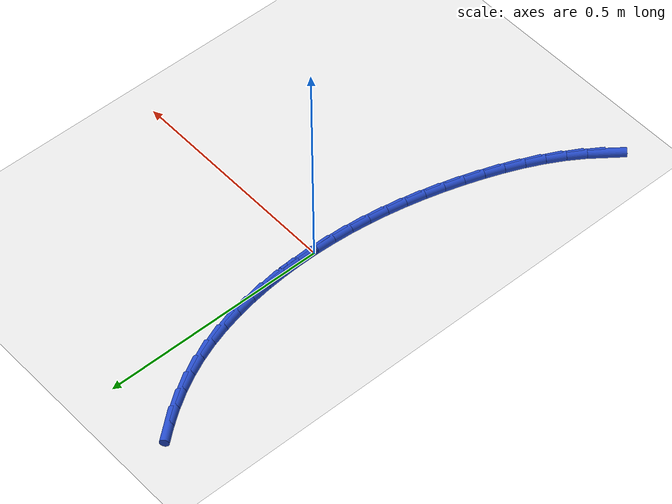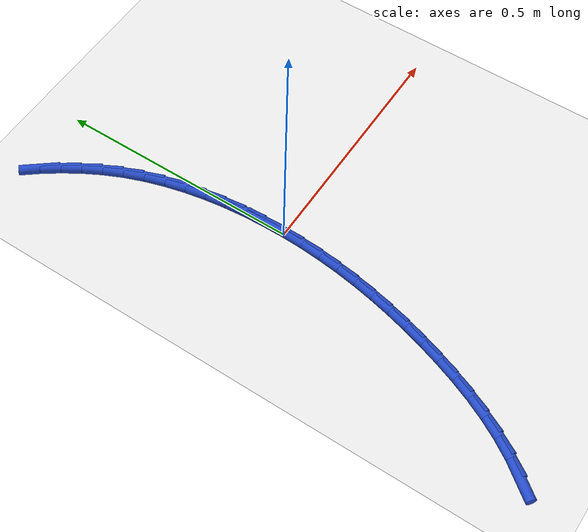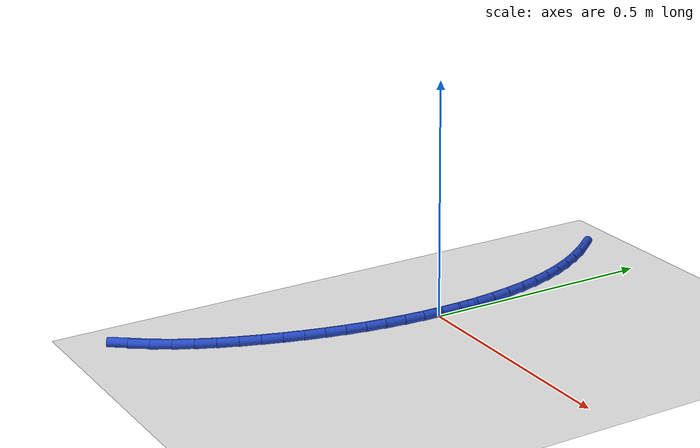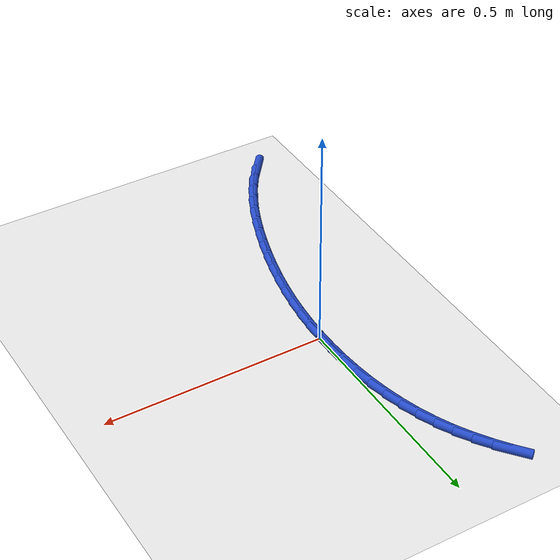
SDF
<sdf version="1.6">
 <world name="default">
  <model name="ground_plane">
   <static>1</static>
   <link name="link">
    <collision name="collision">
     <geometry><plane><normal>0 0 1</normal><size>100 100</size></plane></geometry>
     <surface><friction><ode><mu>100</mu><mu2>50</mu2></ode></friction></surface>
    </collision>
    <visual name="visual">
     <cast_shadows>0</cast_shadows>
     <geometry><plane><normal>0 0 1</normal><size>100 100</size></plane></geometry>
     <material>
      <script><uri>file://media/materials/scripts/gazebo.material</uri><name>Gazebo/WhiteGlow</name></script>
     </material>
    </visual>
   </link>
  </model>
  <model name="line">
   <link name="link_0">
    <pose>2.6020852139652106e-18 6.938893903907228e-17 0.01 0 1.57 -1.5685525435773073</pose>
    <collision name="collision">
     <geometry><cylinder><radius>0.01</radius><length>0.08</length></cylinder></geometry>
    </collision>
    <visual name="visual">
     <material>
      <script><name>Gazebo/Blue</name><uri>file://media/materials/scripts/gazebo.material</uri></script>
     </material>
     <geometry><cylinder><radius>0.01</radius><length>0.08</length></cylinder></geometry>
    </visual>
   </link>
   <link name="link_1">
    <pose>-9.700862294422992e-05 0.04323432824750585 0.01 0 1.57 -1.526157090669468</pose>
    <collision name="collision">
     <geometry><cylinder><radius>0.01</radius><length>0.08</length></cylinder></geometry>
    </collision>
    <visual name="visual">
     <material>
      <script><name>Gazebo/Blue</name><uri>file://media/materials/scripts/gazebo.material</uri></script>
     </material>
     <geometry><cylinder><radius>0.01</radius><length>0.08</length></cylinder></geometry>
    </visual>
   </link>
   <link name="link_2">
    <pose>-0.0020345948504014 0.08661094577264346 0.01 0 1.57 -1.481457483727426</pose>
    <collision name="collision">
     <geometry><cylinder><radius>0.01</radius><length>0.08</length></cylinder></geometry>
    </collision>
    <visual name="visual">
     <material>
      <script><name>Gazebo/Blue</name><uri>file://media/materials/scripts/gazebo.material</uri></script>
     </material>
     <geometry><cylinder><radius>0.01</radius><length>0.08</length></cylinder></geometry>
    </visual>
   </link>
   <link name="link_3">
    <pose>-0.005911129818629876 0.12988681452351736 0.01 0 1.57 -1.4339087129957682</pose>
    <collision name="collision">
     <geometry><cylinder><radius>0.01</radius><length>0.08</length></cylinder></geometry>
    </collision>
    <visual name="visual">
     <material>
      <script><name>Gazebo/Blue</name><uri>file://media/materials/scripts/gazebo.material</uri></script>
     </material>
     <geometry><cylinder><radius>0.01</radius><length>0.08</length></cylinder></geometry>
    </visual>
   </link>
   <link name="link_4">
    <pose>-0.011824984663888063 0.17281889644823215 0.01 0 1.57 -1.3829444190439464</pose>
    <collision name="collision">
     <geometry><cylinder><radius>0.01</radius><length>0.08</length></cylinder></geometry>
    </collision>
    <visual name="visual">
     <material>
      <script><name>Gazebo/Blue</name><uri>file://media/materials/scripts/gazebo.material</uri></script>
     </material>
     <geometry><cylinder><radius>0.01</radius><length>0.08</length></cylinder></geometry>
    </visual>
   </link>
   <link name="link_5">
    <pose>-0.01987453052243432 0.21516415349489235 0.01 0 1.57 -1.3279779806215533</pose>
    <collision name="collision">
     <geometry><cylinder><radius>0.01</radius><length>0.08</length></cylinder></geometry>
    </collision>
    <visual name="visual">
     <material>
      <script><name>Gazebo/Blue</name><uri>file://media/materials/scripts/gazebo.material</uri></script>
     </material>
     <geometry><cylinder><radius>0.01</radius><length>0.08</length></cylinder></geometry>
    </visual>
   </link>
   <link name="link_6">
    <pose>-0.030158138530527026 0.25667954761160244 0.01 0 1.57 -1.2684124791670501</pose>
    <collision name="collision">
     <geometry><cylinder><radius>0.01</radius><length>0.08</length></cylinder></geometry>
    </collision>
    <visual name="visual">
     <material>
      <script><name>Gazebo/Blue</name><uri>file://media/materials/scripts/gazebo.material</uri></script>
     </material>
     <geometry><cylinder><radius>0.01</radius><length>0.08</length></cylinder></geometry>
    </visual>
   </link>
   <link name="link_7">
    <pose>-0.04277417982442458 0.29712204074646703 0.01 0 1.57 -1.2036632140516401</pose>
    <collision name="collision">
     <geometry><cylinder><radius>0.01</radius><length>0.08</length></cylinder></geometry>
    </collision>
    <visual name="visual">
     <material>
      <script><name>Gazebo/Blue</name><uri>file://media/materials/scripts/gazebo.material</uri></script>
     </material>
     <geometry><cylinder><radius>0.01</radius><length>0.08</length></cylinder></geometry>
    </visual>
   </link>
   <link name="link_8">
    <pose>-0.05782102554038537 0.3362485948475908 0.01 0 1.57 -1.1341719705778326</pose>
    <collision name="collision">
     <geometry><cylinder><radius>0.01</radius><length>0.08</length></cylinder></geometry>
    </collision>
    <visual name="visual">
     <material>
      <script><name>Gazebo/Blue</name><uri>file://media/materials/scripts/gazebo.material</uri></script>
     </material>
     <geometry><cylinder><radius>0.01</radius><length>0.08</length></cylinder></geometry>
    </visual>
   </link>
   <link name="link_9">
    <pose>-0.07536937202131329 0.373852469561113 0.01 0 1.57 -1.0660788415146025</pose>
    <collision name="collision">
     <geometry><cylinder><radius>0.01</radius><length>0.08</length></cylinder></geometry>
    </collision>
    <visual name="visual">
     <material>
      <script><name>Gazebo/Blue</name><uri>file://media/materials/scripts/gazebo.material</uri></script>
     </material>
     <geometry><cylinder><radius>0.01</radius><length>0.08</length></cylinder></geometry>
    </visual>
   </link>
   <link name="link_10">
    <pose>-0.09531484360284005 0.4099565454294516 0.01 0 1.57 -1.0024793015918327</pose>
    <collision name="collision">
     <geometry><cylinder><radius>0.01</radius><length>0.08</length></cylinder></geometry>
    </collision>
    <visual name="visual">
     <material>
      <script><name>Gazebo/Blue</name><uri>file://media/materials/scripts/gazebo.material</uri></script>
     </material>
     <geometry><cylinder><radius>0.01</radius><length>0.08</length></cylinder></geometry>
    </visual>
   </link>
   <link name="link_11">
    <pose>-0.11748480464907832 0.4446732313901359 0.01 0 1.57 -0.9439532809843925</pose>
    <collision name="collision">
     <geometry><cylinder><radius>0.01</radius><length>0.08</length></cylinder></geometry>
    </collision>
    <visual name="visual">
     <material>
      <script><name>Gazebo/Blue</name><uri>file://media/materials/scripts/gazebo.material</uri></script>
     </material>
     <geometry><cylinder><radius>0.01</radius><length>0.08</length></cylinder></geometry>
    </visual>
   </link>
   <link name="link_12">
    <pose>-0.14170646449625524 0.47811513971212805 0.01 0 1.57 -0.8908490246325244</pose>
    <collision name="collision">
     <geometry><cylinder><radius>0.01</radius><length>0.08</length></cylinder></geometry>
    </collision>
    <visual name="visual">
     <material>
      <script><name>Gazebo/Blue</name><uri>file://media/materials/scripts/gazebo.material</uri></script>
     </material>
     <geometry><cylinder><radius>0.01</radius><length>0.08</length></cylinder></geometry>
    </visual>
   </link>
   <link name="link_165">
    <pose>-0.195717259281678 -0.6033903711224953 0.01 0 1.57 0.904285268633542</pose>
    <collision name="collision">
     <geometry><cylinder><radius>0.01</radius><length>0.08</length></cylinder></geometry>
    </collision>
    <visual name="visual">
     <material>
      <script><name>Gazebo/Blue</name><uri>file://media/materials/scripts/gazebo.material</uri></script>
     </material>
     <geometry><cylinder><radius>0.01</radius><length>0.08</length></cylinder></geometry>
    </visual>
   </link>
   <link name="link_166">
    <pose>-0.16949132827520091 -0.5700491150356503 0.01 0 1.57 0.9833611051586798</pose>
    <collision name="collision">
     <geometry><cylinder><radius>0.01</radius><length>0.08</length></cylinder></geometry>
    </collision>
    <visual name="visual">
     <material>
      <script><name>Gazebo/Blue</name><uri>file://media/materials/scripts/gazebo.material</uri></script>
     </material>
     <geometry><cylinder><radius>0.01</radius><length>0.08</length></cylinder></geometry>
    </visual>
   </link>
   <link name="link_167">
    <pose>-0.14578866247484112 -0.5344513715930191 0.01 0 1.57 1.0524759101406238</pose>
    <collision name="collision">
     <geometry><cylinder><radius>0.01</radius><length>0.08</length></cylinder></geometry>
    </collision>
    <visual name="visual">
     <material>
      <script><name>Gazebo/Blue</name><uri>file://media/materials/scripts/gazebo.material</uri></script>
     </material>
     <geometry><cylinder><radius>0.01</radius><length>0.08</length></cylinder></geometry>
    </visual>
   </link>
   <link name="link_168">
    <pose>-0.12441384169920168 -0.4969736318422013 0.01 0 1.57 1.112255959322198</pose>
    <collision name="collision">
     <geometry><cylinder><radius>0.01</radius><length>0.08</length></cylinder></geometry>
    </collision>
    <visual name="visual">
     <material>
      <script><name>Gazebo/Blue</name><uri>file://media/materials/scripts/gazebo.material</uri></script>
     </material>
     <geometry><cylinder><radius>0.01</radius><length>0.08</length></cylinder></geometry>
    </visual>
   </link>
   <link name="link_169">
    <pose>-0.10517144576688554 -0.4579923868307958 0.01 0 1.57 1.1634608279573564</pose>
    <collision name="collision">
     <geometry><cylinder><radius>0.01</radius><length>0.08</length></cylinder></geometry>
    </collision>
    <visual name="visual">
     <material>
      <script><name>Gazebo/Blue</name><uri>file://media/materials/scripts/gazebo.material</uri></script>
     </material>
     <geometry><cylinder><radius>0.01</radius><length>0.08</length></cylinder></geometry>
    </visual>
   </link>
   <link name="link_170">
    <pose>-0.08786605449649552 -0.41788412760640153 0.01 0 1.57 1.206848225395955</pose>
    <collision name="collision">
     <geometry><cylinder><radius>0.01</radius><length>0.08</length></cylinder></geometry>
    </collision>
    <visual name="visual">
     <material>
      <script><name>Gazebo/Blue</name><uri>file://media/materials/scripts/gazebo.material</uri></script>
     </material>
     <geometry><cylinder><radius>0.01</radius><length>0.08</length></cylinder></geometry>
    </visual>
   </link>
   <link name="link_171">
    <pose>-0.07230224770663535 -0.3770253452166197 0.01 0 1.57 1.2430954868188013</pose>
    <collision name="collision">
     <geometry><cylinder><radius>0.01</radius><length>0.08</length></cylinder></geometry>
    </collision>
    <visual name="visual">
     <material>
      <script><name>Gazebo/Blue</name><uri>file://media/materials/scripts/gazebo.material</uri></script>
     </material>
     <geometry><cylinder><radius>0.01</radius><length>0.08</length></cylinder></geometry>
    </visual>
   </link>
   <link name="link_172">
    <pose>-0.058284742331834685 -0.3357922922450885 0.01 0 1.57 1.274789412474063</pose>
    <collision name="collision">
     <geometry><cylinder><radius>0.01</radius><length>0.08</length></cylinder></geometry>
    </collision>
    <visual name="visual">
     <material>
      <script><name>Gazebo/Blue</name><uri>file://media/materials/scripts/gazebo.material</uri></script>
     </material>
     <geometry><cylinder><radius>0.01</radius><length>0.08</length></cylinder></geometry>
    </visual>
   </link>
   <link name="link_173">
    <pose>-0.04567862850490697 -0.29445622375807695 0.01 0 1.57 1.3073822291759554</pose>
    <collision name="collision">
     <geometry><cylinder><radius>0.01</radius><length>0.08</length></cylinder></geometry>
    </collision>
    <visual name="visual">
     <material>
      <script><name>Gazebo/Blue</name><uri>file://media/materials/scripts/gazebo.material</uri></script>
     </material>
     <geometry><cylinder><radius>0.01</radius><length>0.08</length></cylinder></geometry>
    </visual>
   </link>
   <link name="link_174">
    <pose>-0.0345038405048568 -0.25301909898542657 0.01 0 1.57 1.3416252324695384</pose>
    <collision name="collision">
     <geometry><cylinder><radius>0.01</radius><length>0.08</length></cylinder></geometry>
    </collision>
    <visual name="visual">
     <material>
      <script><name>Gazebo/Blue</name><uri>file://media/materials/scripts/gazebo.material</uri></script>
     </material>
     <geometry><cylinder><radius>0.01</radius><length>0.08</length></cylinder></geometry>
    </visual>
   </link>
   <link name="link_175">
    <pose>-0.02480478985188088 -0.21144030777801034 0.01 0 1.57 1.3773943945600047</pose>
    <collision name="collision">
     <geometry><cylinder><radius>0.01</radius><length>0.08</length></cylinder></geometry>
    </collision>
    <visual name="visual">
     <material>
      <script><name>Gazebo/Blue</name><uri>file://media/materials/scripts/gazebo.material</uri></script>
     </material>
     <geometry><cylinder><radius>0.01</radius><length>0.08</length></cylinder></geometry>
    </visual>
   </link>
   <link name="link_176">
    <pose>-0.01662588806617576 -0.16967923998670065 0.01 0 1.57 1.414536179421624</pose>
    <collision name="collision">
     <geometry><cylinder><radius>0.01</radius><length>0.08</length></cylinder></geometry>
    </collision>
    <visual name="visual">
     <material>
      <script><name>Gazebo/Blue</name><uri>file://media/materials/scripts/gazebo.material</uri></script>
     </material>
     <geometry><cylinder><radius>0.01</radius><length>0.08</length></cylinder></geometry>
    </visual>
   </link>
   <link name="link_177">
    <pose>-0.010011546667938513 -0.12769528546237213 0.01 0 1.57 1.4528686257146302</pose>
    <collision name="collision">
     <geometry><cylinder><radius>0.01</radius><length>0.08</length></cylinder></geometry>
    </collision>
    <visual name="visual">
     <material>
      <script><name>Gazebo/Blue</name><uri>file://media/materials/scripts/gazebo.material</uri></script>
     </material>
     <geometry><cylinder><radius>0.01</radius><length>0.08</length></cylinder></geometry>
    </visual>
   </link>
   <link name="link_178">
    <pose>-0.005006177177365658 -0.08544783405589709 0.01 0 1.57 1.4921839714128131</pose>
    <collision name="collision">
     <geometry><cylinder><radius>0.01</radius><length>0.08</length></cylinder></geometry>
    </collision>
    <visual name="visual">
     <material>
      <script><name>Gazebo/Blue</name><uri>file://media/materials/scripts/gazebo.material</uri></script>
     </material>
     <geometry><cylinder><radius>0.01</radius><length>0.08</length></cylinder></geometry>
    </visual>
   </link>
   <link name="link_179">
    <pose>-0.001654191114653915 -0.042896275618148676 0.01 0 1.57 1.5322528436091256</pose>
    <collision name="collision">
     <geometry><cylinder><radius>0.01</radius><length>0.08</length></cylinder></geometry>
    </collision>
    <visual name="visual">
     <material>
      <script><name>Gazebo/Blue</name><uri>file://media/materials/scripts/gazebo.material</uri></script>
     </material>
     <geometry><cylinder><radius>0.01</radius><length>0.08</length></cylinder></geometry>
    </visual>
   </link>
   <link name="link_180">
    <pose>4.336808689942018e-18 1.0408340855860843e-16 0.01 0 1.57 -1.5687627784445008</pose>
    <collision name="collision">
     <geometry><cylinder><radius>0.01</radius><length>0.08</length></cylinder></geometry>
    </collision>
    <visual name="visual">
     <material>
      <script><name>Gazebo/Blue</name><uri>file://media/materials/scripts/gazebo.material</uri></script>
     </material>
     <geometry><cylinder><radius>0.01</radius><length>0.08</length></cylinder></geometry>
    </visual>
   </link>
   <link name="link_181">
    <pose>-8.801535360061438e-05 0.04328160294767614 0.01 0 1.57 -1.5687627784445008</pose>
    <collision name="collision">
     <geometry><cylinder><radius>0.01</radius><length>0.08</length></cylinder></geometry>
    </collision>
    <visual name="visual">
     <material>
      <script><name>Gazebo/Blue</name><uri>file://media/materials/scripts/gazebo.material</uri></script>
     </material>
     <geometry><cylinder><radius>0.01</radius><length>0.08</length></cylinder></geometry>
    </visual>
   </link>
  </model>
 </world>
</sdf>
